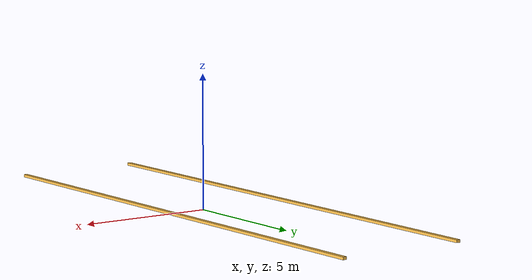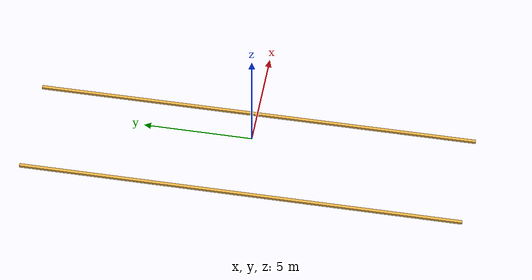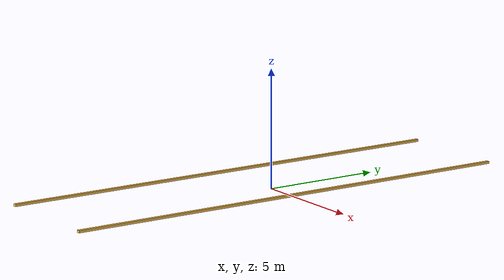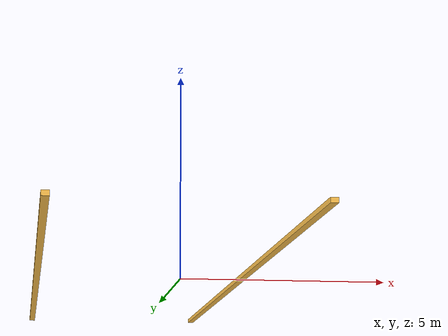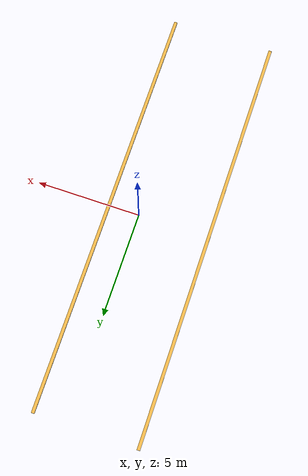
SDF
<?xml version='1.0'?>
<sdf version='1.7'>
  <model name='fRRT1'>
    <pose>-0.97 0 0 0 -0 0</pose>
    <link name='Wall_5'>
      <collision name='Wall_5_Collision'>
        <geometry>
          <box>
            <size>20.15 0.15 0.1</size>
          </box>
        </geometry>
        <pose>0 0 0.05 0 -0 0</pose>
      </collision>
      <visual name='Wall_5_Visual'>
        <pose>0 0 0.05 0 -0 0</pose>
        <geometry>
          <box>
            <size>20.15 0.15 0.1</size>
          </box>
        </geometry>
        <material>
          <script>
            <uri>file://media/materials/scripts/gazebo.material</uri>
            <name>Gazebo/Grey</name>
          </script>
          <ambient>1 0.764706 0.305882 1</ambient>
        </material>
        <meta>
          <layer>0</layer>
        </meta>
      </visual>
      <pose>-2.46 0 0 0 -0 1.5708</pose>
    </link>
    <link name='Wall_7'>
      <collision name='Wall_7_Collision'>
        <geometry>
          <box>
            <size>20.15 0.15 0.1</size>
          </box>
        </geometry>
        <pose>0 0 0.05 0 -0 0</pose>
      </collision>
      <visual name='Wall_7_Visual'>
        <pose>0 0 0.05 0 -0 0</pose>
        <geometry>
          <box>
            <size>20.15 0.15 0.1</size>
          </box>
        </geometry>
        <material>
          <script>
            <uri>file://media/materials/scripts/gazebo.material</uri>
            <name>Gazebo/Grey</name>
          </script>
          <ambient>1 0.764706 0.305882 1</ambient>
        </material>
        <meta>
          <layer>0</layer>
        </meta>
      </visual>
      <pose>2.46 0 0 0 -0 1.5708</pose>
    </link>
    <static>1</static>
  </model>
</sdf>
